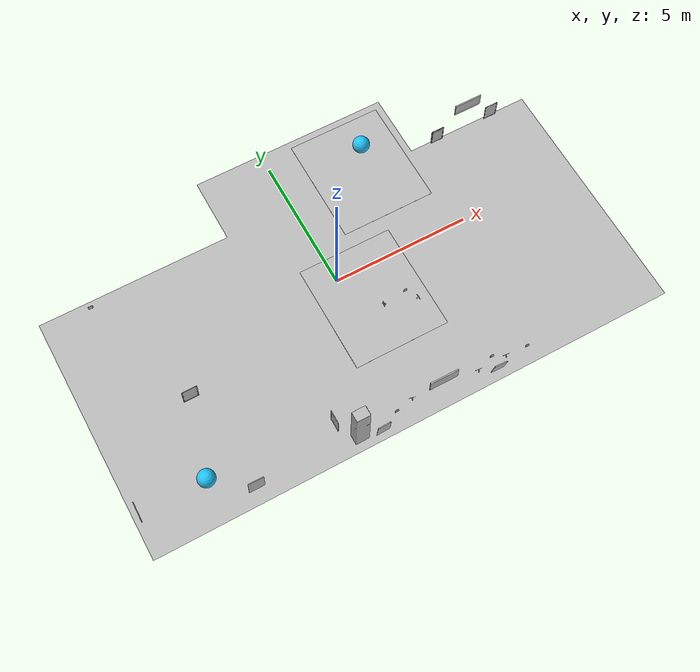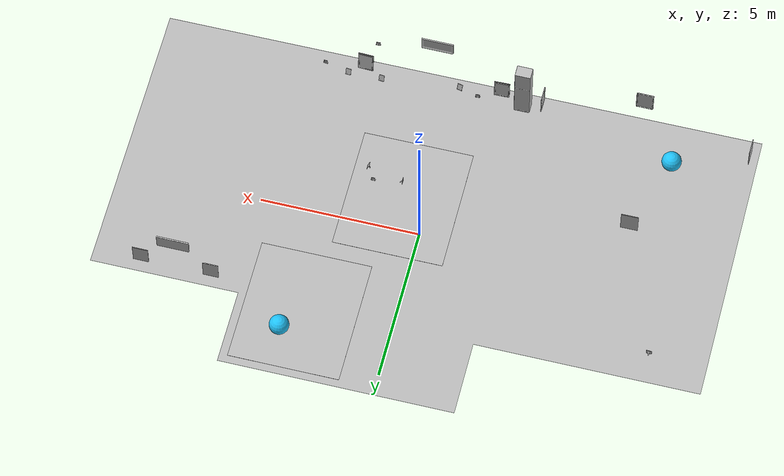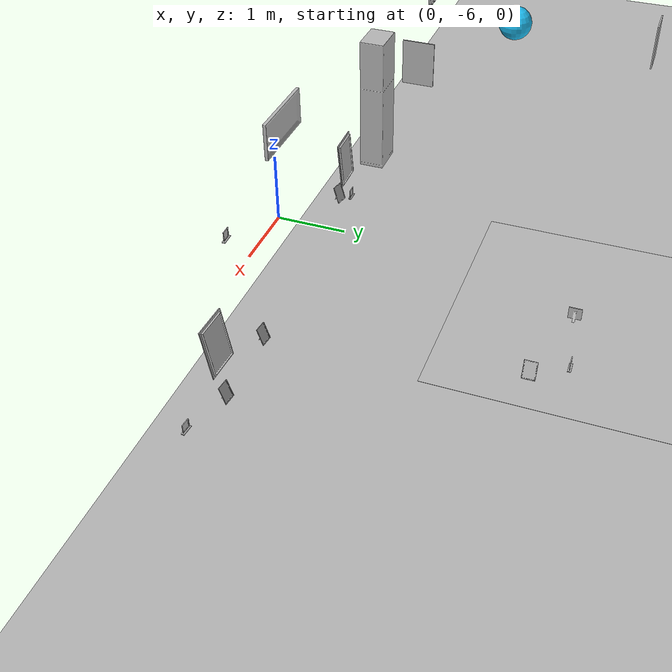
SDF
<sdf version="1.6">
 <world name="default">
  <spherical_coordinates>
   <surface_model>EARTH_WGS84</surface_model>
   <world_frame_orientation>ENU</world_frame_orientation>
   <latitude_deg>47.478950</latitude_deg>
   <longitude_deg>19.057785</longitude_deg>
   <elevation>0</elevation>
   <heading_deg>0</heading_deg>
  </spherical_coordinates>
  <model name="AirconditionerB_01_001">
   <static>true</static>
   <include><uri>model://aws_robomaker_residential_AirconditionerB_01</uri></include>
   <pose>-2.004656 -5.226610 0.003485 0 -0 0</pose>
  </model>
  <model name="Ball_01_001">
   <static>true</static>
   <include><uri>model://aws_robomaker_residential_Ball_01</uri></include>
   <pose>3.295503 4.225674 0.318684 0 -0 0</pose>
  </model>
  <model name="Ball_01_003">
   <static>true</static>
   <include><uri>model://aws_robomaker_residential_Ball_01</uri></include>
   <pose>-6.945503 -4.22174 0.318684 0 -0 0</pose>
  </model>
  <model name="Carpet_01_001">
   <static>true</static>
   <include><uri>model://aws_robomaker_residential_Carpet_01</uri></include>
   <pose>0.785050 -1.106647 0.001106 0 -0 0</pose>
  </model>
  <model name="Carpet_01_002">
   <static>true</static>
   <include><uri>model://aws_robomaker_residential_Carpet_01</uri></include>
   <pose>2.854050 3.45 0.000585 0 -0 0</pose>
  </model>
  <model name="FloorB_01_001">
   <static>true</static>
   <include><uri>model://aws_robomaker_residential_FloorB_01</uri></include>
  </model>
  <model name="PortraitA_01">
   <static>true</static>
   <include><uri>model://aws_robomaker_residential_PortraitA_01</uri></include>
   <pose>-2.712360 -4.817539 1.00000 0 -0 1.566796</pose>
  </model>
  <model name="PortraitB_01">
   <static>true</static>
   <include><uri>model://aws_robomaker_residential_PortraitB_01</uri></include>
   <pose>-1.279683 -5.429630 0.0 -0.076901 0 -3.116718</pose>
  </model>
  <model name="PortraitB_02">
   <static>true</static>
   <include><uri>model://aws_robomaker_residential_PortraitB_02</uri></include>
   <pose>5.737017 3.080310 0.300000 0 -0 0</pose>
  </model>
  <model name="PortraitB_03">
   <static>true</static>
   <include><uri>model://aws_robomaker_residential_PortraitB_03</uri></include>
   <pose>3.071380 -5.349366 0.005494 -0.168428 0.0 3.104232</pose>
  </model>
  <model name="PortraitA_02">
   <static>true</static>
   <include><uri>model://aws_robomaker_residential_PortraitA_02</uri></include>
   <pose>7.937017 3.080310 0.300000 0 -0 3.14</pose>
  </model>
  <model name="PortraitC_01">
   <static>true</static>
   <include><uri>model://aws_robomaker_residential_PortraitC_01</uri></include>
   <pose>-9.294904 -4.526084 1.000000 0 -0 1.554734</pose>
  </model>
  <model name="PortraitD_01">
   <static>true</static>
   <include><uri>model://aws_robomaker_residential_PortraitD_01</uri></include>
   <pose>0.789763 -5.478725 1.800000 0 -0 3.138531</pose>
  </model>
  <model name="PortraitD_02">
   <static>true</static>
   <include><uri>model://aws_robomaker_residential_PortraitD_02</uri></include>
   <pose>6.870181 3.080310 1.488439 0 -0 0</pose>
  </model>
  <model name="PortraitE_01">
   <static>true</static>
   <include><uri>model://aws_robomaker_residential_PortraitE_01</uri></include>
   <pose>-5.773094 -5.492466 1.000000 0 -0 3.132627</pose>
  </model>
  <model name="PortraitE_02">
   <static>true</static>
   <include><uri>model://aws_robomaker_residential_PortraitE_02</uri></include>
   <pose>-6.193025 -1.590208 0.3 0 -0 0.004290</pose>
  </model>
  <model name="DeskPortraitA_01">
   <static>true</static>
   <include><uri>model://aws_robomaker_residential_DeskPortraitA_01</uri></include>
   <pose>-0.036864 -5.110156 0.498660 0 -0 2.927784</pose>
  </model>
  <model name="DeskPortraitA_02">
   <static>true</static>
   <include><uri>model://aws_robomaker_residential_DeskPortraitA_02</uri></include>
   <pose>2.046082 -1.892926 0.0703880 -0.018328 -0.000441 1.576216</pose>
  </model>
  <model name="DeskPortraitC_01">
   <static>true</static>
   <include><uri>model://aws_robomaker_residential_DeskPortraitC_01</uri></include>
   <pose>-7.746377 2.731075 0.694620 0.000488 -0.000359 -0.055499</pose>
  </model>
  <model name="DeskPortraitC_02">
   <static>true</static>
   <include><uri>model://aws_robomaker_residential_DeskPortraitC_02</uri></include>
   <pose>0.964613 -1.586951 0.127676 0.001614 -0.000545 -1.578699</pose>
  </model>
  <model name="DeskPortraitD_01">
   <static>true</static>
   <include><uri>model://aws_robomaker_residential_DeskPortraitD_01</uri></include>
   <pose>2.645560 -5.376225 1.573738 0 -0 -3.112826</pose>
  </model>
  <model name="DeskPortraitD_02">
   <static>true</static>
   <include><uri>model://aws_robomaker_residential_DeskPortraitD_02</uri></include>
   <pose>-0.589211 -5.109890 0.192145 -0.000015 -0.000174 -3.112544</pose>
  </model>
  <model name="DeskPortraitD_03">
   <static>true</static>
   <include><uri>model://aws_robomaker_residential_DeskPortraitD_03</uri></include>
   <pose>1.826729 -1.464881 0.126208 0.000010 0.000006 -3.114380</pose>
  </model>
  <model name="DeskPortraitD_04">
   <static>true</static>
   <include><uri>model://aws_robomaker_residential_DeskPortraitD_04</uri></include>
   <pose>4.302132 -5.176568 0.202496 0.007118 -0.000001 3.046683</pose>
  </model>
  <model name="DeskPortraitB_01">
   <static>true</static>
   <include><uri>model://aws_robomaker_residential_DeskPortraitB_01</uri></include>
   <pose>3.547376 -5.083898 -0.012660 -0.336622 -0.000001 3.046741</pose>
  </model>
  <model name="DeskPortraitB_02">
   <static>true</static>
   <include><uri>model://aws_robomaker_residential_DeskPortraitB_02</uri></include>
   <pose>2.486270 -5.102525 -0.012660 -0.336621 0.000000 3.046798</pose>
  </model>
  <light name="LivingRoom_CeilingLight_0" type="point">
   <pose>1.194296 4.155759 2.2 0 -0 0</pose>
   <diffuse>0.5 0.5 0.5 1</diffuse>
   <specular>0.1 0.1 0.1 1</specular>
   <attenuation>
    <range>20</range>
    <constant>0.32</constant>
    <linear>0.01</linear>
    <quadratic>0.03</quadratic>
   </attenuation>
   <cast_shadows>0</cast_shadows>
   <direction>0 0 -1</direction>
  </light>
  <light name="LivingRoom_CeilingLight_1" type="point">
   <pose>1.194296 -1.589959 2.2 0 -0 0</pose>
   <diffuse>0.5 0.5 0.5 1</diffuse>
   <specular>0.1 0.1 0.1 1</specular>
   <attenuation>
    <range>20</range>
    <constant>0.05</constant>
    <linear>0.01</linear>
    <quadratic>0.09</quadratic>
   </attenuation>
   <cast_shadows>0</cast_shadows>
   <direction>0 0 -1</direction>
  </light>
  <light name="LivingRoom_WallLight_0" type="point">
   <pose>1.76956 -5.444370 2.2 0 -0 0</pose>
   <diffuse>0.24 0.24 0.24 1</diffuse>
   <specular>0.1 0.1 0.1 1</specular>
   <attenuation>
    <range>20</range>
    <constant>0.12</constant>
    <linear>0.00</linear>
    <quadratic>0.03</quadratic>
   </attenuation>
   <direction>0 0 -1</direction>
  </light>
  <light name="LivingRoom_WallLight_1" type="point">
   <pose>-0.13826 -5.444370 2.2 0 -0 0</pose>
   <diffuse>0.24 0.24 0.24 1</diffuse>
   <specular>0.1 0.1 0.1 1</specular>
   <attenuation>
    <range>20</range>
    <constant>0.12</constant>
    <linear>0.00</linear>
    <quadratic>0.03</quadratic>
   </attenuation>
   <direction>0 0 -1</direction>
  </light>
  <light name="TV_Light_0" type="point">
   <pose>0.8269 -4.939577 1.1 0 -0 0</pose>
   <diffuse>0.31372 0.31372 0.34901 1</diffuse>
   <specular>0.1 0.1 0.1 1</specular>
   <attenuation>
    <range>3</range>
    <constant>0.10</constant>
    <linear>0.04</linear>
    <quadratic>0.50</quadratic>
   </attenuation>
   <direction>0 0 -1</direction>
  </light>
  <light name="BedRoom_Portrait_Light_0" type="spot">
   <pose>-6.190379 -1.829697 1.5587 0.3 -0 0.0</pose>
   <diffuse>0.5 0.5 0.5 1</diffuse>
   <specular>0.1 0.1 0.1 1</specular>
   <attenuation>
    <range>20</range>
    <constant>0.50</constant>
    <linear>0.01</linear>
    <quadratic>0.00</quadratic>
   </attenuation>
   <spot><inner_angle>0.6</inner_angle><outer_angle>1.0</outer_angle><falloff>1.0</falloff></spot>
   <direction>0 0 -1</direction>
  </light>
  <light name="BedRoom_CeilingLight_0" type="point">
   <pose>-6.451061 -0.692040 2.000000 0 -0 0</pose>
   <diffuse>0.5 0.5 0.5 1</diffuse>
   <specular>0.1 0.1 0.1 1</specular>
   <attenuation>
    <range>20</range>
    <constant>0.32</constant>
    <linear>0.01</linear>
    <quadratic>0.03</quadratic>
   </attenuation>
   <cast_shadows>0</cast_shadows>
   <direction>0 0 -1</direction>
  </light>
  <light name="Kitchen_CeilingLight_0" type="point">
   <pose>7.8582 -1.5905 2.280000 0 -0 0</pose>
   <diffuse>0.5 0.5 0.5 1</diffuse>
   <specular>0.1 0.1 0.1 1</specular>
   <attenuation>
    <range>20</range>
    <constant>0.3</constant>
    <linear>0.01</linear>
    <quadratic>0.01</quadratic>
   </attenuation>
   <cast_shadows>0</cast_shadows>
   <direction>0 0 -1</direction>
  </light>
 </world>
</sdf>

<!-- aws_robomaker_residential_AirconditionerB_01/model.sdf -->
<sdf version="1.6">
  <model name="aws_robomaker_residential_AirconditionerB_01">
    <link name="link">
      <inertial>
        <mass>1</mass>
      </inertial>
      <collision name="collision">
        <geometry>
          <mesh>
	  <uri>model://aws_robomaker_residential_AirconditionerB_01/meshes/aws_AirconditionerB_01_collision.DAE</uri>
            <scale>1 1 1</scale>
          </mesh>
        </geometry>
      </collision>
      <visual name="visual">
	    <geometry>
          <mesh>
            <uri>model://aws_robomaker_residential_AirconditionerB_01/meshes/aws_AirconditionerB_01_visual.DAE</uri>
          </mesh>
        </geometry>
      <meta> <layer> 1 </layer></meta>
</visual>
    </link>
  </model>
</sdf>

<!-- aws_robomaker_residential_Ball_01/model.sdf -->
<sdf version="1.6">
  <model name="aws_robomaker_residential_Ball_01">
    <link name="link">
      <inertial>
        <mass>0.12</mass>

          <inertia>
            <ixx>0.030752</ixx>
            <ixy>0</ixy>
            <ixz>0</ixz>
            <iyy>0.030752</iyy>
            <iyz>0</iyz>
            <izz>0.030752</izz>
          </inertia>
      </inertial>
      <collision name="collision">

        <geometry>

          <sphere>
            <radius>0.31 </radius>
          </sphere>

        </geometry>

        <surface>
          <friction>
            <ode>
              <mu>0.85</mu>
              <mu2>0.85</mu2>
            </ode>
          </friction>

          <contact>
            <ode>
              <kd>8500</kd>
              <max_vel>5.1</max_vel>
            </ode>
          </contact>
        </surface>

      </collision>
      <visual name="visual">
	    <geometry>

          <sphere>
            <radius>0.31 </radius>
          </sphere>
      </geometry>
          <material>
            <diffuse>0.12 0.76 0.97 1</diffuse>
            <ambient>0.03 0.21 0.27 1</ambient>
          </material>

      <meta> <layer> 1 </layer></meta>
</visual>
    </link>
  </model>
</sdf>

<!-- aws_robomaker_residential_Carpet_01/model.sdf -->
<sdf version="1.6">
  <model name="aws_robomaker_residential_Carpet_01">
    <link name="link">
      <inertial>
        <mass>8.1</mass>
      </inertial>

      <collision name="collision">

        <geometry>
          <mesh>
            <uri>model://aws_robomaker_residential_Carpet_01/meshes/aws_Carpet_01_collision.DAE</uri>
            <scale>1 1 0.95</scale>
          </mesh>
        </geometry>

        <surface>
          <friction>
            <ode>
              <mu>100</mu>
              <mu2>50</mu2>
            </ode>
          </friction>
          <contact>
            <ode>
            </ode>
          </contact>
        </surface>

        <pose>0 0 -0.01 0 0 0 </pose>
      </collision>

      <visual name="visual">
	    <geometry>
          <mesh>
            <uri>model://aws_robomaker_residential_Carpet_01/meshes/aws_Carpet_01_visual.DAE</uri>
          </mesh>
        </geometry>
      <meta> <layer> 1 </layer></meta>
</visual>
    </link>

    <static>1</static>

  </model>
</sdf>

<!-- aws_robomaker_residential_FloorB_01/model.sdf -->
<sdf version="1.6">
  <model name="aws_robomaker_residential_FloorB_01">
    <link name="link">
      <inertial>
        <mass>100</mass>
      </inertial>

      <collision name="collision">
        <geometry>
          <mesh>
            <uri>model://aws_robomaker_residential_FloorB_01/meshes/aws_FloorB_01_collision.DAE</uri>
            <scale>1 1 0.9</scale>
          </mesh>
        </geometry>

        <surface>
          <friction>
            <ode>
              <mu>100</mu>
              <mu2>50</mu2>
            </ode>
          </friction>
        </surface>
      </collision>

      <visual name="visual">
	    <geometry>
          <mesh>
            <uri>model://aws_robomaker_residential_FloorB_01/meshes/aws_FloorB_01_visual.DAE</uri>
          </mesh>
        </geometry>
      <meta> <layer> 1 </layer></meta>
</visual>
    </link>

	<static>1</static>
  </model>
</sdf>

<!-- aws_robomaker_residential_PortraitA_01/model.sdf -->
<sdf version="1.6">
  <model name="aws_robomaker_residential_PortraitA_01">
    <link name="link">
      <inertial>
        <mass>1</mass>
      </inertial>
      <collision name="collision">
        <geometry>
          <mesh>
            <uri>model://models/aws_robomaker_residential_PortraitA_01/meshes/aws_PortraitA_01_collision.DAE</uri>
            <scale>1 1 1</scale>
          </mesh>
        </geometry>
      </collision>
      <visual name="visual">
	    <geometry>
          <mesh>
            <uri>model://models/aws_robomaker_residential_PortraitA_01/meshes/aws_PortraitA_01_visual.DAE</uri>
          </mesh>
        </geometry>
      <meta> <layer> 2 </layer></meta>
</visual>
    </link>
	<static>1</static>
  </model>
</sdf>

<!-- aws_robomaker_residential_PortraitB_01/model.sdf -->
<sdf version="1.6">
  <model name="aws_robomaker_residential_PortraitB_01">
    <link name="link">
      <inertial>
        <mass>1</mass>
      </inertial>
      <collision name="collision">
        <geometry>
          <mesh>
            <uri>model://models/aws_robomaker_residential_PortraitB_01/meshes/aws_PortraitB_01_collision.DAE</uri>
            <scale>1 1 1</scale>
          </mesh>
        </geometry>
      </collision>
      <visual name="visual">
	    <geometry>
          <mesh>
            <uri>model://models/aws_robomaker_residential_PortraitB_01/meshes/aws_PortraitB_01_visual.DAE</uri>
          </mesh>
        </geometry>
      <meta> <layer> 2 </layer></meta>
</visual>
    </link>
	<static>1</static>
  </model>
</sdf>

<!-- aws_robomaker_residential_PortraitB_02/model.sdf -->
<sdf version="1.6">
  <model name="aws_robomaker_residential_PortraitB_02">
    <link name="link">
      <inertial>
        <mass>1</mass>
      </inertial>
      <collision name="collision">
        <geometry>
          <mesh>
            <uri>model://models/aws_robomaker_residential_PortraitB_02/meshes/aws_PortraitB_01_collision.DAE</uri>
            <scale>1 1 1</scale>
          </mesh>
        </geometry>
      </collision>
      <visual name="visual">
	    <geometry>
          <mesh>
            <uri>model://models/aws_robomaker_residential_PortraitB_02/meshes/aws_PortraitB_01_visual.DAE</uri>
          </mesh>
        </geometry>
      <meta> <layer> 2 </layer></meta>
</visual>
    </link>
	<static>1</static>
  </model>
</sdf>

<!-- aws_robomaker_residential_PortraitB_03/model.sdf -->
<sdf version="1.6">
  <model name="aws_robomaker_residential_PortraitB_03">
    <link name="link">
      <inertial>
        <mass>1</mass>
      </inertial>
      <collision name="collision">
        <geometry>
          <mesh>
            <uri>model://models/aws_robomaker_residential_PortraitB_03/meshes/aws_PortraitB_01_collision.DAE</uri>
            <scale>1 1 1</scale>
          </mesh>
        </geometry>
      </collision>
      <visual name="visual">
	    <geometry>
          <mesh>
            <uri>model://models/aws_robomaker_residential_PortraitB_03/meshes/aws_PortraitB_01_visual.DAE</uri>
          </mesh>
        </geometry>
      <meta> <layer> 2 </layer></meta>
</visual>
    </link>
	<static>1</static>
  </model>
</sdf>

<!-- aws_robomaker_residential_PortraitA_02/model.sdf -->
<sdf version="1.6">
  <model name="aws_robomaker_residential_PortraitA_02">
    <link name="link">
      <inertial>
        <mass>1</mass>
      </inertial>
      <collision name="collision">
        <geometry>
          <mesh>
            <uri>model://models/aws_robomaker_residential_PortraitA_02/meshes/aws_PortraitA_01_collision.DAE</uri>
            <scale>1 1 1</scale>
          </mesh>
        </geometry>
      </collision>
      <visual name="visual">
	    <geometry>
          <mesh>
            <uri>model://models/aws_robomaker_residential_PortraitA_02/meshes/aws_PortraitA_01_visual.DAE</uri>
          </mesh>
        </geometry>
      <meta> <layer> 2 </layer></meta>
</visual>
    </link>
	<static>1</static>
  </model>
</sdf>

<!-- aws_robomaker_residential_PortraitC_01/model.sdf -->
<sdf version="1.6">
  <model name="aws_robomaker_residential_PortraitC_01">
    <link name="link">
      <inertial>
        <mass>1</mass>
      </inertial>
      <collision name="collision">
        <geometry>
          <mesh>
            <uri>model://models/aws_robomaker_residential_PortraitC_01/meshes/aws_PortraitC_01_collision.DAE</uri>
            <scale>1 1 1</scale>
          </mesh>
        </geometry>
      </collision>
      <visual name="visual">
	    <geometry>
          <mesh>
            <uri>model://models/aws_robomaker_residential_PortraitC_01/meshes/aws_PortraitC_01_visual.DAE</uri>
          </mesh>
        </geometry>
      <meta> <layer> 2 </layer></meta>
</visual>
    </link>
	<static>1</static>
  </model>
</sdf>

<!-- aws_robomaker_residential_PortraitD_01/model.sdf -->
<sdf version="1.6">
  <model name="aws_robomaker_residential_PortraitD_01">
    <link name="link">

      <inertial>
        <mass>1.5</mass>
      </inertial>

      <collision name="collision">
        <geometry>
          <mesh>
            <uri>model://models/aws_robomaker_residential_PortraitD_01/meshes/aws_PortraitD_01_collision.DAE</uri>
            <scale>1 1 1</scale>
          </mesh>
        </geometry>

      </collision>

      <visual name="visual">
	    <geometry>
          <mesh>
            <uri>model://models/aws_robomaker_residential_PortraitD_01/meshes/aws_PortraitD_01_visual.DAE</uri>
          </mesh>
        </geometry>
      <meta> <layer> 2 </layer></meta>
</visual>
    </link>
	<static>1</static>
  </model>
</sdf>

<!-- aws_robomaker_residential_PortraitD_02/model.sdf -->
<sdf version="1.6">
  <model name="aws_robomaker_residential_PortraitD_02">
    <link name="link">

      <inertial>
        <mass>1.5</mass>
      </inertial>

      <collision name="collision">
        <geometry>
          <mesh>
            <uri>model://models/aws_robomaker_residential_PortraitD_02/meshes/aws_PortraitD_01_collision.DAE</uri>
            <scale>1 1 1</scale>
          </mesh>
        </geometry>

      </collision>

      <visual name="visual">
	    <geometry>
          <mesh>
            <uri>model://models/aws_robomaker_residential_PortraitD_02/meshes/aws_PortraitD_01_visual.DAE</uri>
          </mesh>
        </geometry>
      <meta> <layer> 2 </layer></meta>
</visual>
    </link>
	<static>1</static>
  </model>
</sdf>

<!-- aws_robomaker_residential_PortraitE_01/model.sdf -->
<sdf version="1.6">
  <model name="aws_robomaker_residential_PortraitE_01">
    <link name="link">
      <inertial>
        <mass>1</mass>
      </inertial>
      <collision name="collision">
        <geometry>
          <mesh>
            <uri>model://models/aws_robomaker_residential_PortraitE_01/meshes/aws_PortraitE_01_collision.DAE</uri>
            <scale>1 1 1</scale>
          </mesh>
        </geometry>
      </collision>
      <visual name="visual">
	    <geometry>
          <mesh>
            <uri>model://models/aws_robomaker_residential_PortraitE_01/meshes/aws_PortraitE_01_visual.DAE</uri>
          </mesh>
        </geometry>
      <meta> <layer> 2 </layer></meta>
</visual>
    </link>
	<static>1</static>
  </model>
</sdf>

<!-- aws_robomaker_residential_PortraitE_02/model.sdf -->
<sdf version="1.6">
  <model name="aws_robomaker_residential_PortraitE_02">
    <link name="link">
      <inertial>
        <mass>1</mass>
      </inertial>
      <collision name="collision">
        <geometry>
          <mesh>
            <uri>model://models/aws_robomaker_residential_PortraitE_02/meshes/aws_PortraitE_01_collision.DAE</uri>
            <scale>1 1 1</scale>
          </mesh>
        </geometry>
      </collision>
      <visual name="visual">
	    <geometry>
          <mesh>
            <uri>model://models/aws_robomaker_residential_PortraitE_02/meshes/aws_PortraitE_01_visual.DAE</uri>
          </mesh>
        </geometry>
      <meta> <layer> 2 </layer></meta>
</visual>
    </link>
	<static>1</static>
  </model>
</sdf>

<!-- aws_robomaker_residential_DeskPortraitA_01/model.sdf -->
<sdf version="1.6">
  <model name="aws_robomaker_residential_DeskPortraitA_01">
    <link name="link">

      <inertial>
        <mass>1</mass>
        <inertia>
            <ixx>0.0835</ixx>
            <ixy>0</ixy>
            <ixz>0</ixz>
            <iyy>0.16</iyy>
            <iyz>0</iyz>
            <izz>0.08347</izz>
        </inertia>
      </inertial>

      <collision name="collision">
        <geometry>
          <mesh>
            <uri>model://models/aws_robomaker_residential_DeskPortraitA_01/meshes/aws_DeskPortraitA_01_collision.DAE</uri>
            <scale>1 1 1</scale>
          </mesh>
        </geometry>
      </collision>

      <visual name="visual">
	    <geometry>
          <mesh>
            <uri>model://models/aws_robomaker_residential_DeskPortraitA_01/meshes/aws_DeskPortraitA_01_visual.DAE</uri>
          </mesh>
        </geometry>
      <meta> <layer> 1 </layer></meta>
</visual>
    </link>
  </model>
</sdf>

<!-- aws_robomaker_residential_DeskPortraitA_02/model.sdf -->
<sdf version="1.6">
  <model name="aws_robomaker_residential_DeskPortraitA_02">
    <link name="link">

      <inertial>
        <mass>1</mass>
        <inertia>
            <ixx>0.0835</ixx>
            <ixy>0</ixy>
            <ixz>0</ixz>
            <iyy>0.16</iyy>
            <iyz>0</iyz>
            <izz>0.08347</izz>
        </inertia>
      </inertial>

      <collision name="collision">
        <geometry>
          <mesh>
            <uri>model://models/aws_robomaker_residential_DeskPortraitA_02/meshes/aws_DeskPortraitA_01_collision.DAE</uri>
            <scale>1 1 1</scale>
          </mesh>
        </geometry>
      </collision>

      <visual name="visual">
	    <geometry>
          <mesh>
            <uri>model://models/aws_robomaker_residential_DeskPortraitA_02/meshes/aws_DeskPortraitA_01_visual.DAE</uri>
          </mesh>
        </geometry>
      <meta> <layer> 1 </layer></meta>
</visual>
    </link>
  </model>
</sdf>

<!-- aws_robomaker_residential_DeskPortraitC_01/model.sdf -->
<sdf version="1.6">
  <model name="aws_robomaker_residential_DeskPortraitC_01">
    <link name="link">
      <inertial>
        <mass>1</mass>
        <inertia>
            <ixx>0.0835</ixx>
            <ixy>0</ixy>
            <ixz>0</ixz>
            <iyy>0.16</iyy>
            <iyz>0</iyz>
            <izz>0.08347</izz>
        </inertia>
      </inertial>
      <collision name="collision">
        <geometry>
          <mesh>
            <uri>model://models/aws_robomaker_residential_DeskPortraitC_01/meshes/aws_DeskPortraitC_01_collision.DAE</uri>
            <scale>1 1 1</scale>
          </mesh>
        </geometry>
      </collision>
      <visual name="visual">
	    <geometry>
          <mesh>
            <uri>model://models/aws_robomaker_residential_DeskPortraitC_01/meshes/aws_DeskPortraitC_01_visual.DAE</uri>
          </mesh>
        </geometry>
      <meta> <layer> 1 </layer></meta>
</visual>
    </link>
  </model>
</sdf>

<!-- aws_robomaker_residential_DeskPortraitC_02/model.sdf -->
<sdf version="1.6">
  <model name="aws_robomaker_residential_DeskPortraitC_02">
    <link name="link">
      <inertial>
        <mass>1</mass>
        <inertia>
            <ixx>0.0835</ixx>
            <ixy>0</ixy>
            <ixz>0</ixz>
            <iyy>0.16</iyy>
            <iyz>0</iyz>
            <izz>0.08347</izz>
        </inertia>
      </inertial>
      <collision name="collision">
        <geometry>
          <mesh>
            <uri>model://models/aws_robomaker_residential_DeskPortraitC_02/meshes/aws_DeskPortraitC_01_collision.DAE</uri>
            <scale>1 1 1</scale>
          </mesh>
        </geometry>
      </collision>
      <visual name="visual">
	    <geometry>
          <mesh>
            <uri>model://models/aws_robomaker_residential_DeskPortraitC_02/meshes/aws_DeskPortraitC_01_visual.DAE</uri>
          </mesh>
        </geometry>
      <meta> <layer> 1 </layer></meta>
</visual>
    </link>
  </model>
</sdf>

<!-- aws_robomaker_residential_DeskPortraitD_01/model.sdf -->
<sdf version="1.6">
  <model name="aws_robomaker_residential_DeskPortraitD_01">
    <link name="link">
      <inertial>
        <mass>0.4</mass>
          <inertia>

            <ixx>0.0616</ixx>
            <ixy>0</ixy>
            <ixz>0</ixz>
            <iyy>0.1313</iyy>
            <iyz>0</iyz>
            <izz>0.0803</izz>
          </inertia>
      </inertial>

      <collision name="collision">
        <geometry>
          <mesh>
            <uri>model://models/aws_robomaker_residential_DeskPortraitD_01/meshes/aws_DeskPortraitD_01_collision.DAE</uri>
            <scale>1 1 1</scale>
          </mesh>
        </geometry>

        <surface>
          <friction>
            <ode>
              <mu>0.7</mu>
              <mu2>0.7</mu2>
            </ode>
          </friction>

          <contact>
            <ode>
              <kd>28500</kd>
            </ode>
          </contact>

        </surface>

      </collision>

      <visual name="visual">
	    <geometry>
          <mesh>
            <uri>model://models/aws_robomaker_residential_DeskPortraitD_01/meshes/aws_DeskPortraitD_01_visual.DAE</uri>
          </mesh>
        </geometry>
      <meta> <layer> 1 </layer></meta>
</visual>
    </link>
  </model>
</sdf>

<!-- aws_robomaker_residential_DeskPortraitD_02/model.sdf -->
<sdf version="1.6">
  <model name="aws_robomaker_residential_DeskPortraitD_02">
    <link name="link">
      <inertial>
        <mass>0.4</mass>
          <inertia>

            <ixx>0.0616</ixx>
            <ixy>0</ixy>
            <ixz>0</ixz>
            <iyy>0.1313</iyy>
            <iyz>0</iyz>
            <izz>0.0803</izz>
          </inertia>
      </inertial>

      <collision name="collision">
        <geometry>
          <mesh>
            <uri>model://models/aws_robomaker_residential_DeskPortraitD_02/meshes/aws_DeskPortraitD_01_collision.DAE</uri>
            <scale>1 1 1</scale>
          </mesh>
        </geometry>

        <surface>
          <friction>
            <ode>
              <mu>0.7</mu>
              <mu2>0.7</mu2>
            </ode>
          </friction>

          <contact>
            <ode>
              <kd>28500</kd>
            </ode>
          </contact>

        </surface>

      </collision>

      <visual name="visual">
	    <geometry>
          <mesh>
            <uri>model://models/aws_robomaker_residential_DeskPortraitD_02/meshes/aws_DeskPortraitD_01_visual.DAE</uri>
          </mesh>
        </geometry>
      <meta> <layer> 1 </layer></meta>
</visual>
    </link>
  </model>
</sdf>

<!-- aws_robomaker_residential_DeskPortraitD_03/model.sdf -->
<sdf version="1.6">
  <model name="aws_robomaker_residential_DeskPortraitD_03">
    <link name="link">
      <inertial>
        <mass>0.4</mass>
          <inertia>

            <ixx>0.0616</ixx>
            <ixy>0</ixy>
            <ixz>0</ixz>
            <iyy>0.1313</iyy>
            <iyz>0</iyz>
            <izz>0.0803</izz>
          </inertia>
      </inertial>

      <collision name="collision">
        <geometry>
          <mesh>
            <uri>model://models/aws_robomaker_residential_DeskPortraitD_03/meshes/aws_DeskPortraitD_01_collision.DAE</uri>
            <scale>1 1 1</scale>
          </mesh>
        </geometry>

        <surface>
          <friction>
            <ode>
              <mu>0.7</mu>
              <mu2>0.7</mu2>
            </ode>
          </friction>

          <contact>
            <ode>
              <kd>28500</kd>
            </ode>
          </contact>

        </surface>

      </collision>

      <visual name="visual">
	    <geometry>
          <mesh>
            <uri>model://models/aws_robomaker_residential_DeskPortraitD_03/meshes/aws_DeskPortraitD_01_visual.DAE</uri>
          </mesh>
        </geometry>
      <meta> <layer> 1 </layer></meta>
</visual>
    </link>
  </model>
</sdf>

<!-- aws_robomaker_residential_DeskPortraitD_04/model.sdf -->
<sdf version="1.6">
  <model name="aws_robomaker_residential_DeskPortraitD_04">
    <link name="link">
      <inertial>
        <mass>0.4</mass>
          <inertia>

            <ixx>0.0616</ixx>
            <ixy>0</ixy>
            <ixz>0</ixz>
            <iyy>0.1313</iyy>
            <iyz>0</iyz>
            <izz>0.0803</izz>
          </inertia>
      </inertial>

      <collision name="collision">
        <geometry>
          <mesh>
            <uri>model://models/aws_robomaker_residential_DeskPortraitD_04/meshes/aws_DeskPortraitD_01_collision.DAE</uri>
            <scale>1 1 1</scale>
          </mesh>
        </geometry>

        <surface>
          <friction>
            <ode>
              <mu>0.7</mu>
              <mu2>0.7</mu2>
            </ode>
          </friction>

          <contact>
            <ode>
              <kd>28500</kd>
            </ode>
          </contact>

        </surface>

      </collision>

      <visual name="visual">
	    <geometry>
          <mesh>
            <uri>model://models/aws_robomaker_residential_DeskPortraitD_04/meshes/aws_DeskPortraitD_01_visual.DAE</uri>
          </mesh>
        </geometry>
      <meta> <layer> 1 </layer></meta>
</visual>
    </link>
  </model>
</sdf>

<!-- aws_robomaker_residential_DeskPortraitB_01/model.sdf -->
<sdf version="1.6">
  <model name="aws_robomaker_residential_DeskPortraitB_01">
    <link name="link">

      <inertial>
        <mass>1</mass>

        <inertia>
            <ixx>0.0135</ixx>
            <ixy>0</ixy>
            <ixz>0</ixz>
            <iyy>0.02</iyy>
            <iyz>0</iyz>
            <izz>0.01347</izz>
        </inertia>
      </inertial>

      <collision name="collision">
        <geometry>
          <mesh>
            <uri>model://models/aws_robomaker_residential_DeskPortraitB_01/meshes/aws_DeskPortraitB_01_collision.DAE</uri>
            <scale>1 1 1</scale>
          </mesh>
        </geometry>
      </collision>

      <visual name="visual">
	    <geometry>
          <mesh>
            <uri>model://models/aws_robomaker_residential_DeskPortraitB_01/meshes/aws_DeskPortraitB_01_visual.DAE</uri>
          </mesh>
        </geometry>
      <meta> <layer> 1 </layer></meta>
</visual>
    </link>
  </model>
</sdf>

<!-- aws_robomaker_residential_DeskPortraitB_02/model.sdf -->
<sdf version="1.6">
  <model name="aws_robomaker_residential_DeskPortraitB_02">
    <link name="link">

      <inertial>
        <mass>1</mass>
        <inertia>
            <ixx>0.0135</ixx>
            <ixy>0</ixy>
            <ixz>0</ixz>
            <iyy>0.02</iyy>
            <iyz>0</iyz>
            <izz>0.01347</izz>
        </inertia>
      </inertial>

      <collision name="collision">
        <geometry>
          <mesh>
            <uri>model://models/aws_robomaker_residential_DeskPortraitB_02/meshes/aws_DeskPortraitB_01_collision.DAE</uri>
            <scale>1 1 1</scale>
          </mesh>
        </geometry>
      </collision>

      <visual name="visual">
	    <geometry>
          <mesh>
            <uri>model://models/aws_robomaker_residential_DeskPortraitB_02/meshes/aws_DeskPortraitB_01_visual.DAE</uri>
          </mesh>
        </geometry>
      <meta> <layer> 1 </layer></meta>
</visual>
    </link>
  </model>
</sdf>
